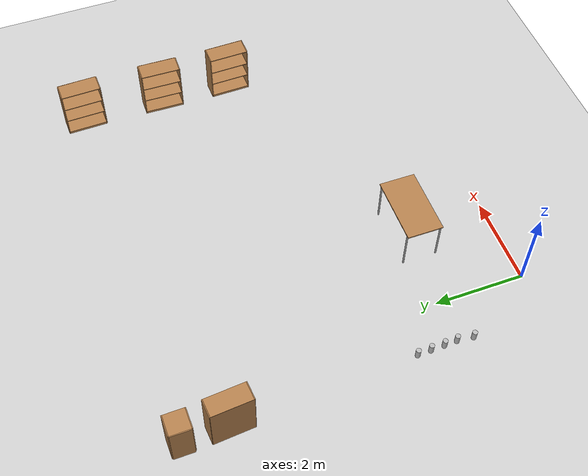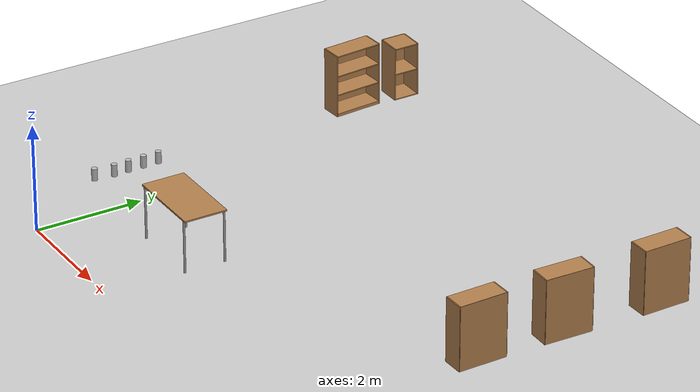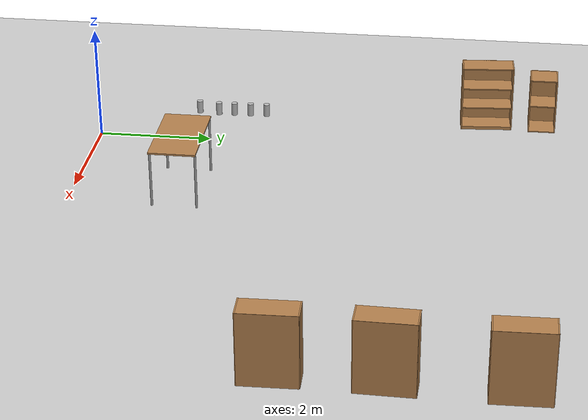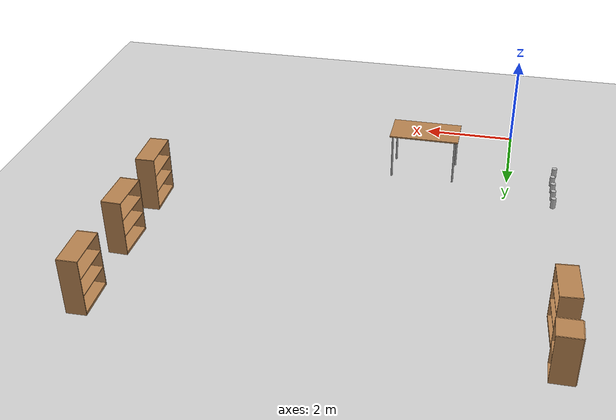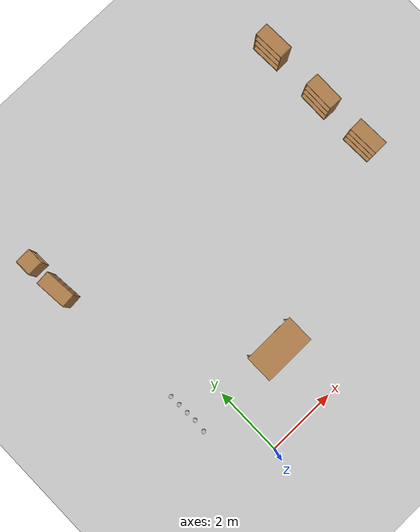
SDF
<sdf version="1.6">
 <world name="default">
  <model name="ground_plane">
   <static>1</static>
   <link name="link">
    <collision name="collision">
     <geometry><plane><normal>0 0 1</normal><size>100 100</size></plane></geometry>
     <surface>
      <contact><collide_bitmask>65535</collide_bitmask></contact>
      <friction><ode><mu>100</mu><mu2>50</mu2></ode></friction>
     </surface>
    </collision>
    <visual name="visual">
     <cast_shadows>0</cast_shadows>
     <geometry><plane><normal>0 0 1</normal><size>100 100</size></plane></geometry>
     <material>
      <script><uri>file://media/materials/scripts/gazebo.material</uri><name>Gazebo/Grey</name></script>
     </material>
    </visual>
   </link>
  </model>
  <model name="table">
   <static>1</static>
   <link name="link">
    <collision name="surface">
     <pose>0 0 1 0 -0 0</pose>
     <geometry><box><size>1.5 0.8 0.03</size></box></geometry>
     <surface><friction><ode><mu>0.6</mu><mu2>0.6</mu2></ode></friction></surface>
    </collision>
    <visual name="visual1">
     <pose>0 0 1 0 -0 0</pose>
     <geometry><box><size>1.5 0.8 0.03</size></box></geometry>
     <material>
      <script><uri>file://media/materials/scripts/gazebo.material</uri><name>Gazebo/Wood</name></script>
     </material>
    </visual>
    <collision name="front_left_leg">
     <pose>0.68 0.38 0.5 0 -0 0</pose>
     <geometry><cylinder><radius>0.02</radius><length>1</length></cylinder></geometry>
    </collision>
    <visual name="front_left_leg">
     <pose>0.68 0.38 0.5 0 -0 0</pose>
     <geometry><cylinder><radius>0.02</radius><length>1</length></cylinder></geometry>
     <material>
      <script><uri>file://media/materials/scripts/gazebo.material</uri><name>Gazebo/Grey</name></script>
     </material>
    </visual>
    <collision name="front_right_leg">
     <pose>0.68 -0.38 0.5 0 -0 0</pose>
     <geometry><cylinder><radius>0.02</radius><length>1</length></cylinder></geometry>
    </collision>
    <visual name="front_right_leg">
     <pose>0.68 -0.38 0.5 0 -0 0</pose>
     <geometry><cylinder><radius>0.02</radius><length>1</length></cylinder></geometry>
     <material>
      <script><uri>file://media/materials/scripts/gazebo.material</uri><name>Gazebo/Grey</name></script>
     </material>
    </visual>
    <collision name="back_right_leg">
     <pose>-0.68 -0.38 0.5 0 -0 0</pose>
     <geometry><cylinder><radius>0.02</radius><length>1</length></cylinder></geometry>
    </collision>
    <visual name="back_right_leg">
     <pose>-0.68 -0.38 0.5 0 -0 0</pose>
     <geometry><cylinder><radius>0.02</radius><length>1</length></cylinder></geometry>
     <material>
      <script><uri>file://media/materials/scripts/gazebo.material</uri><name>Gazebo/Grey</name></script>
     </material>
    </visual>
    <collision name="back_left_leg">
     <pose>-0.68 0.38 0.5 0 -0 0</pose>
     <geometry><cylinder><radius>0.02</radius><length>1</length></cylinder></geometry>
    </collision>
    <visual name="back_left_leg">
     <pose>-0.68 0.38 0.5 0 -0 0</pose>
     <geometry><cylinder><radius>0.02</radius><length>1</length></cylinder></geometry>
     <material>
      <script><uri>file://media/materials/scripts/gazebo.material</uri><name>Gazebo/Grey</name></script>
     </material>
    </visual>
   </link>
   <pose>1.87497 1.84541 0 0 -0 0</pose>
  </model>
  <model name="bookshelf">
   <static>1</static>
   <link name="link">
    <inertial><mass>1</mass></inertial>
    <collision name="back">
     <pose>0 0.005 0.6 0 -0 0</pose>
     <geometry><box><size>0.9 0.01 1.2</size></box></geometry>
    </collision>
    <visual name="visual1">
     <pose>0 0.005 0.6 0 -0 0</pose>
     <geometry><box><size>0.9 0.01 1.2</size></box></geometry>
     <material>
      <script><uri>file://media/materials/scripts/gazebo.material</uri><name>Gazebo/Wood</name></script>
     </material>
    </visual>
    <collision name="left_side">
     <pose>0.45 -0.195 0.6 0 -0 0</pose>
     <geometry><box><size>0.02 0.4 1.2</size></box></geometry>
    </collision>
    <visual name="visual2">
     <pose>0.45 -0.195 0.6 0 -0 0</pose>
     <geometry><box><size>0.02 0.4 1.2</size></box></geometry>
     <material>
      <script><uri>file://media/materials/scripts/gazebo.material</uri><name>Gazebo/Wood</name></script>
     </material>
    </visual>
    <collision name="right_side">
     <pose>-0.45 -0.195 0.6 0 -0 0</pose>
     <geometry><box><size>0.02 0.4 1.2</size></box></geometry>
    </collision>
    <visual name="visual3">
     <pose>-0.45 -0.195 0.6 0 -0 0</pose>
     <geometry><box><size>0.02 0.4 1.2</size></box></geometry>
     <material>
      <script><uri>file://media/materials/scripts/gazebo.material</uri><name>Gazebo/Wood</name></script>
     </material>
    </visual>
    <collision name="bottom">
     <pose>0 -0.195 0.03 0 -0 0</pose>
     <geometry><box><size>0.88 0.4 0.06</size></box></geometry>
    </collision>
    <visual name="visual4">
     <pose>0 -0.195 0.03 0 -0 0</pose>
     <geometry><box><size>0.88 0.4 0.06</size></box></geometry>
     <material>
      <script><uri>file://media/materials/scripts/gazebo.material</uri><name>Gazebo/Wood</name></script>
     </material>
    </visual>
    <collision name="top">
     <pose>0 -0.195 1.19 0 -0 0</pose>
     <geometry><box><size>0.88 0.4 0.02</size></box></geometry>
    </collision>
    <visual name="visual5">
     <pose>0 -0.195 1.19 0 -0 0</pose>
     <geometry><box><size>0.88 0.4 0.02</size></box></geometry>
     <material>
      <script><uri>file://media/materials/scripts/gazebo.material</uri><name>Gazebo/Wood</name></script>
     </material>
    </visual>
    <collision name="low_shelf">
     <pose>0 -0.195 0.43 0 -0 0</pose>
     <geometry><box><size>0.88 0.4 0.02</size></box></geometry>
    </collision>
    <visual name="visual6">
     <pose>0 -0.195 0.43 0 -0 0</pose>
     <geometry><box><size>0.88 0.4 0.02</size></box></geometry>
     <material>
      <script><uri>file://media/materials/scripts/gazebo.material</uri><name>Gazebo/Wood</name></script>
     </material>
    </visual>
    <collision name="high_shelf">
     <pose>0 -0.195 0.8 0 -0 0</pose>
     <geometry><box><size>0.88 0.4 0.02</size></box></geometry>
    </collision>
    <visual name="visual7">
     <pose>0 -0.195 0.8 0 -0 0</pose>
     <geometry><box><size>0.88 0.4 0.02</size></box></geometry>
     <material>
      <script><uri>file://media/materials/scripts/gazebo.material</uri><name>Gazebo/Wood</name></script>
     </material>
    </visual>
   </link>
   <pose>7.58398 5.7994 0 0 0 -1.5925</pose>
  </model>
  <model name="bookshelf_clone">
   <static>1</static>
   <link name="link">
    <inertial><mass>1</mass></inertial>
    <collision name="back">
     <pose>0 0.005 0.6 0 -0 0</pose>
     <geometry><box><size>0.9 0.01 1.2</size></box></geometry>
    </collision>
    <visual name="visual1">
     <pose>0 0.005 0.6 0 -0 0</pose>
     <geometry><box><size>0.9 0.01 1.2</size></box></geometry>
     <material>
      <script><uri>file://media/materials/scripts/gazebo.material</uri><name>Gazebo/Wood</name></script>
     </material>
    </visual>
    <collision name="left_side">
     <pose>0.45 -0.195 0.6 0 -0 0</pose>
     <geometry><box><size>0.02 0.4 1.2</size></box></geometry>
    </collision>
    <visual name="visual2">
     <pose>0.45 -0.195 0.6 0 -0 0</pose>
     <geometry><box><size>0.02 0.4 1.2</size></box></geometry>
     <material>
      <script><uri>file://media/materials/scripts/gazebo.material</uri><name>Gazebo/Wood</name></script>
     </material>
    </visual>
    <collision name="right_side">
     <pose>-0.45 -0.195 0.6 0 -0 0</pose>
     <geometry><box><size>0.02 0.4 1.2</size></box></geometry>
    </collision>
    <visual name="visual3">
     <pose>-0.45 -0.195 0.6 0 -0 0</pose>
     <geometry><box><size>0.02 0.4 1.2</size></box></geometry>
     <material>
      <script><uri>file://media/materials/scripts/gazebo.material</uri><name>Gazebo/Wood</name></script>
     </material>
    </visual>
    <collision name="bottom">
     <pose>0 -0.195 0.03 0 -0 0</pose>
     <geometry><box><size>0.88 0.4 0.06</size></box></geometry>
    </collision>
    <visual name="visual4">
     <pose>0 -0.195 0.03 0 -0 0</pose>
     <geometry><box><size>0.88 0.4 0.06</size></box></geometry>
     <material>
      <script><uri>file://media/materials/scripts/gazebo.material</uri><name>Gazebo/Wood</name></script>
     </material>
    </visual>
    <collision name="top">
     <pose>0 -0.195 1.19 0 -0 0</pose>
     <geometry><box><size>0.88 0.4 0.02</size></box></geometry>
    </collision>
    <visual name="visual5">
     <pose>0 -0.195 1.19 0 -0 0</pose>
     <geometry><box><size>0.88 0.4 0.02</size></box></geometry>
     <material>
      <script><uri>file://media/materials/scripts/gazebo.material</uri><name>Gazebo/Wood</name></script>
     </material>
    </visual>
    <collision name="low_shelf">
     <pose>0 -0.195 0.43 0 -0 0</pose>
     <geometry><box><size>0.88 0.4 0.02</size></box></geometry>
    </collision>
    <visual name="visual6">
     <pose>0 -0.195 0.43 0 -0 0</pose>
     <geometry><box><size>0.88 0.4 0.02</size></box></geometry>
     <material>
      <script><uri>file://media/materials/scripts/gazebo.material</uri><name>Gazebo/Wood</name></script>
     </material>
    </visual>
    <collision name="high_shelf">
     <pose>0 -0.195 0.8 0 -0 0</pose>
     <geometry><box><size>0.88 0.4 0.02</size></box></geometry>
    </collision>
    <visual name="visual7">
     <pose>0 -0.195 0.8 0 -0 0</pose>
     <geometry><box><size>0.88 0.4 0.02</size></box></geometry>
     <material>
      <script><uri>file://media/materials/scripts/gazebo.material</uri><name>Gazebo/Wood</name></script>
     </material>
    </visual>
   </link>
   <pose>7.57618 4.16292 0 0 0 -1.54718</pose>
  </model>
  <model name="bookshelf_clone_0">
   <static>1</static>
   <link name="link">
    <inertial><mass>1</mass></inertial>
    <collision name="back">
     <pose>0 0.005 0.6 0 -0 0</pose>
     <geometry><box><size>0.9 0.01 1.2</size></box></geometry>
    </collision>
    <visual name="visual1">
     <pose>0 0.005 0.6 0 -0 0</pose>
     <geometry><box><size>0.9 0.01 1.2</size></box></geometry>
     <material>
      <script><uri>file://media/materials/scripts/gazebo.material</uri><name>Gazebo/Wood</name></script>
     </material>
    </visual>
    <collision name="left_side">
     <pose>0.45 -0.195 0.6 0 -0 0</pose>
     <geometry><box><size>0.02 0.4 1.2</size></box></geometry>
    </collision>
    <visual name="visual2">
     <pose>0.45 -0.195 0.6 0 -0 0</pose>
     <geometry><box><size>0.02 0.4 1.2</size></box></geometry>
     <material>
      <script><uri>file://media/materials/scripts/gazebo.material</uri><name>Gazebo/Wood</name></script>
     </material>
    </visual>
    <collision name="right_side">
     <pose>-0.45 -0.195 0.6 0 -0 0</pose>
     <geometry><box><size>0.02 0.4 1.2</size></box></geometry>
    </collision>
    <visual name="visual3">
     <pose>-0.45 -0.195 0.6 0 -0 0</pose>
     <geometry><box><size>0.02 0.4 1.2</size></box></geometry>
     <material>
      <script><uri>file://media/materials/scripts/gazebo.material</uri><name>Gazebo/Wood</name></script>
     </material>
    </visual>
    <collision name="bottom">
     <pose>0 -0.195 0.03 0 -0 0</pose>
     <geometry><box><size>0.88 0.4 0.06</size></box></geometry>
    </collision>
    <visual name="visual4">
     <pose>0 -0.195 0.03 0 -0 0</pose>
     <geometry><box><size>0.88 0.4 0.06</size></box></geometry>
     <material>
      <script><uri>file://media/materials/scripts/gazebo.material</uri><name>Gazebo/Wood</name></script>
     </material>
    </visual>
    <collision name="top">
     <pose>0 -0.195 1.19 0 -0 0</pose>
     <geometry><box><size>0.88 0.4 0.02</size></box></geometry>
    </collision>
    <visual name="visual5">
     <pose>0 -0.195 1.19 0 -0 0</pose>
     <geometry><box><size>0.88 0.4 0.02</size></box></geometry>
     <material>
      <script><uri>file://media/materials/scripts/gazebo.material</uri><name>Gazebo/Wood</name></script>
     </material>
    </visual>
    <collision name="low_shelf">
     <pose>0 -0.195 0.43 0 -0 0</pose>
     <geometry><box><size>0.88 0.4 0.02</size></box></geometry>
    </collision>
    <visual name="visual6">
     <pose>0 -0.195 0.43 0 -0 0</pose>
     <geometry><box><size>0.88 0.4 0.02</size></box></geometry>
     <material>
      <script><uri>file://media/materials/scripts/gazebo.material</uri><name>Gazebo/Wood</name></script>
     </material>
    </visual>
    <collision name="high_shelf">
     <pose>0 -0.195 0.8 0 -0 0</pose>
     <geometry><box><size>0.88 0.4 0.02</size></box></geometry>
    </collision>
    <visual name="visual7">
     <pose>0 -0.195 0.8 0 -0 0</pose>
     <geometry><box><size>0.88 0.4 0.02</size></box></geometry>
     <material>
      <script><uri>file://media/materials/scripts/gazebo.material</uri><name>Gazebo/Wood</name></script>
     </material>
    </visual>
   </link>
   <pose>7.60102 7.69258 0 0 0 -1.54718</pose>
  </model>
  <model name="bookshelf_0">
   <static>1</static>
   <link name="link">
    <inertial><mass>1</mass></inertial>
    <collision name="back">
     <pose>0 0.005 0.6 0 -0 0</pose>
     <geometry><box><size>0.9 0.01 1.2</size></box></geometry>
    </collision>
    <visual name="visual1">
     <pose>0 0.005 0.6 0 -0 0</pose>
     <geometry><box><size>0.9 0.01 1.2</size></box></geometry>
     <material>
      <script><uri>file://media/materials/scripts/gazebo.material</uri><name>Gazebo/Wood</name></script>
     </material>
    </visual>
    <collision name="left_side">
     <pose>0.45 -0.195 0.6 0 -0 0</pose>
     <geometry><box><size>0.02 0.4 1.2</size></box></geometry>
    </collision>
    <visual name="visual2">
     <pose>0.45 -0.195 0.6 0 -0 0</pose>
     <geometry><box><size>0.02 0.4 1.2</size></box></geometry>
     <material>
      <script><uri>file://media/materials/scripts/gazebo.material</uri><name>Gazebo/Wood</name></script>
     </material>
    </visual>
    <collision name="right_side">
     <pose>-0.45 -0.195 0.6 0 -0 0</pose>
     <geometry><box><size>0.02 0.4 1.2</size></box></geometry>
    </collision>
    <visual name="visual3">
     <pose>-0.45 -0.195 0.6 0 -0 0</pose>
     <geometry><box><size>0.02 0.4 1.2</size></box></geometry>
     <material>
      <script><uri>file://media/materials/scripts/gazebo.material</uri><name>Gazebo/Wood</name></script>
     </material>
    </visual>
    <collision name="bottom">
     <pose>0 -0.195 0.03 0 -0 0</pose>
     <geometry><box><size>0.88 0.4 0.06</size></box></geometry>
    </collision>
    <visual name="visual4">
     <pose>0 -0.195 0.03 0 -0 0</pose>
     <geometry><box><size>0.88 0.4 0.06</size></box></geometry>
     <material>
      <script><uri>file://media/materials/scripts/gazebo.material</uri><name>Gazebo/Wood</name></script>
     </material>
    </visual>
    <collision name="top">
     <pose>0 -0.195 1.19 0 -0 0</pose>
     <geometry><box><size>0.88 0.4 0.02</size></box></geometry>
    </collision>
    <visual name="visual5">
     <pose>0 -0.195 1.19 0 -0 0</pose>
     <geometry><box><size>0.88 0.4 0.02</size></box></geometry>
     <material>
      <script><uri>file://media/materials/scripts/gazebo.material</uri><name>Gazebo/Wood</name></script>
     </material>
    </visual>
    <collision name="low_shelf">
     <pose>0 -0.195 0.43 0 -0 0</pose>
     <geometry><box><size>0.88 0.4 0.02</size></box></geometry>
    </collision>
    <visual name="visual6">
     <pose>0 -0.195 0.43 0 -0 0</pose>
     <geometry><box><size>0.88 0.4 0.02</size></box></geometry>
     <material>
      <script><uri>file://media/materials/scripts/gazebo.material</uri><name>Gazebo/Wood</name></script>
     </material>
    </visual>
    <collision name="high_shelf">
     <pose>0 -0.195 0.8 0 -0 0</pose>
     <geometry><box><size>0.88 0.4 0.02</size></box></geometry>
    </collision>
    <visual name="visual7">
     <pose>0 -0.195 0.8 0 -0 0</pose>
     <geometry><box><size>0.88 0.4 0.02</size></box></geometry>
     <material>
      <script><uri>file://media/materials/scripts/gazebo.material</uri><name>Gazebo/Wood</name></script>
     </material>
    </visual>
   </link>
   <pose>-1.37204 6.89346 0 0 -0 1.64797</pose>
  </model>
  <model name="beer">
   <link name="link">
    <pose>0 0 0.115 0 -0 0</pose>
    <inertial>
     <mass>0.39</mass>
     <inertia><ixx>0.00058</ixx><ixy>0</ixy><ixz>0</ixz><iyy>0.00058</iyy><iyz>0</iyz><izz>0.00019</izz></inertia>
    </inertial>
    <collision name="collision">
     <geometry><cylinder><radius>0.055</radius><length>0.23</length></cylinder></geometry>
    </collision>
    <visual name="visual">
     <geometry><cylinder><radius>0.055</radius><length>0.23</length></cylinder></geometry>
     <material>
      <script>
       <uri>model://beer/materials/scripts</uri>
       <uri>model://beer/materials/textures</uri>
       <name>Beer/Diffuse</name>
      </script>
     </material>
    </visual>
   </link>
   <pose>-0.977429 1.99935 0.039804 1.2e-05 6.9e-05 -0.000198</pose>
  </model>
  <model name="beer_clone">
   <link name="link">
    <pose>0 0 0.115 0 -0 0</pose>
    <inertial>
     <mass>0.39</mass>
     <inertia><ixx>0.00058</ixx><ixy>0</ixy><ixz>0</ixz><iyy>0.00058</iyy><iyz>0</iyz><izz>0.00019</izz></inertia>
    </inertial>
    <collision name="collision">
     <geometry><cylinder><radius>0.055</radius><length>0.23</length></cylinder></geometry>
    </collision>
    <visual name="visual">
     <geometry><cylinder><radius>0.055</radius><length>0.23</length></cylinder></geometry>
     <material>
      <script>
       <uri>model://beer/materials/scripts</uri>
       <uri>model://beer/materials/textures</uri>
       <name>Beer/Diffuse</name>
      </script>
     </material>
    </visual>
   </link>
   <pose>-0.991004 2.28359 0.039792 4e-05 -0 -0.000419</pose>
  </model>
  <model name="beer_clone_0">
   <link name="link">
    <pose>0 0 0.115 0 -0 0</pose>
    <inertial>
     <mass>0.39</mass>
     <inertia><ixx>0.00058</ixx><ixy>0</ixy><ixz>0</ixz><iyy>0.00058</iyy><iyz>0</iyz><izz>0.00019</izz></inertia>
    </inertial>
    <collision name="collision">
     <geometry><cylinder><radius>0.055</radius><length>0.23</length></cylinder></geometry>
    </collision>
    <visual name="visual">
     <geometry><cylinder><radius>0.055</radius><length>0.23</length></cylinder></geometry>
     <material>
      <script>
       <uri>model://beer/materials/scripts</uri>
       <uri>model://beer/materials/textures</uri>
       <name>Beer/Diffuse</name>
      </script>
     </material>
    </visual>
   </link>
   <pose>-0.99855 2.58406 0.039804 1.2e-05 6.7e-05 -0.000441</pose>
  </model>
  <model name="beer_clone_1">
   <link name="link">
    <pose>0 0 0.115 0 -0 0</pose>
    <inertial>
     <mass>0.39</mass>
     <inertia><ixx>0.00058</ixx><ixy>0</ixy><ixz>0</ixz><iyy>0.00058</iyy><iyz>0</iyz><izz>0.00019</izz></inertia>
    </inertial>
    <collision name="collision">
     <geometry><cylinder><radius>0.055</radius><length>0.23</length></cylinder></geometry>
    </collision>
    <visual name="visual">
     <geometry><cylinder><radius>0.055</radius><length>0.23</length></cylinder></geometry>
     <material>
      <script>
       <uri>model://beer/materials/scripts</uri>
       <uri>model://beer/materials/textures</uri>
       <name>Beer/Diffuse</name>
      </script>
     </material>
    </visual>
   </link>
   <pose>-1.00742 2.88211 0.039805 2.4e-05 9.1e-05 -0.000305</pose>
  </model>
  <model name="beer_clone_2">
   <link name="link">
    <pose>0 0 0.115 0 -0 0</pose>
    <inertial>
     <mass>0.39</mass>
     <inertia><ixx>0.00058</ixx><ixy>0</ixy><ixz>0</ixz><iyy>0.00058</iyy><iyz>0</iyz><izz>0.00019</izz></inertia>
    </inertial>
    <collision name="collision">
     <geometry><cylinder><radius>0.055</radius><length>0.23</length></cylinder></geometry>
    </collision>
    <visual name="visual">
     <geometry><cylinder><radius>0.055</radius><length>0.23</length></cylinder></geometry>
     <material>
      <script>
       <uri>model://beer/materials/scripts</uri>
       <uri>model://beer/materials/textures</uri>
       <name>Beer/Diffuse</name>
      </script>
     </material>
    </visual>
   </link>
   <pose>-1.0162 1.63575 0.039806 2.5e-05 9.9e-05 -0.000177</pose>
  </model>
  <model name="cabinet">
   <static>1</static>
   <link name="cabinet_bottom_plate">
    <inertial>
     <pose>0 0 -1 0 -0 0</pose>
     <inertia><ixx>2.05</ixx><ixy>0</ixy><ixz>0</ixz><iyy>2.05</iyy><iyz>0</iyz><izz>2.05</izz></inertia>
     <mass>25</mass>
    </inertial>
    <collision name="cabinet_bottom_plate_geom">
     <pose>0 0 0.01 0 -0 0</pose>
     <geometry><box><size>0.45 0.45 0.02</size></box></geometry>
    </collision>
    <visual name="cabinet_bottom_plate_geom_visual">
     <pose>0 0 0.01 0 -0 0</pose>
     <geometry><box><size>0.45 0.45 0.02</size></box></geometry>
     <material>
      <script><uri>file://media/materials/scripts/gazebo.material</uri><name>Gazebo/Wood</name></script>
     </material>
    </visual>
    <collision name="cabinet_bottom_plate_geom_cabinet_back_plate">
     <pose>0.235 0 0.51 0 -0 0</pose>
     <geometry><box><size>0.02 0.45 1.02</size></box></geometry>
    </collision>
    <visual name="cabinet_bottom_plate_geom_cabinet_back_plate_visual">
     <pose>0.235 0 0.51 0 -0 0</pose>
     <geometry><box><size>0.02 0.45 1.02</size></box></geometry>
     <material>
      <script><uri>file://media/materials/scripts/gazebo.material</uri><name>Gazebo/Wood</name></script>
     </material>
    </visual>
    <collision name="cabinet_bottom_plate_geom_cabinet_left_plate">
     <pose>0 0.235 0.51 0 -0 0</pose>
     <geometry><box><size>0.45 0.02 1.02</size></box></geometry>
    </collision>
    <visual name="cabinet_bottom_plate_geom_cabinet_left_plate_visual">
     <pose>0 0.235 0.51 0 -0 0</pose>
     <geometry><box><size>0.45 0.02 1.02</size></box></geometry>
     <material>
      <script><uri>file://media/materials/scripts/gazebo.material</uri><name>Gazebo/Wood</name></script>
     </material>
    </visual>
    <collision name="cabinet_bottom_plate_geom_cabinet_middle_plate">
     <pose>0 0 0.51 0 -0 0</pose>
     <geometry><box><size>0.45 0.45 0.02</size></box></geometry>
    </collision>
    <visual name="cabinet_bottom_plate_geom_cabinet_middle_plate_visual">
     <pose>0 0 0.51 0 -0 0</pose>
     <geometry><box><size>0.45 0.45 0.02</size></box></geometry>
     <material>
      <script><uri>file://media/materials/scripts/gazebo.material</uri><name>Gazebo/Wood</name></script>
     </material>
    </visual>
    <collision name="cabinet_bottom_plate_geom_cabinet_right_plate">
     <pose>0 -0.235 0.51 0 -0 0</pose>
     <geometry><box><size>0.45 0.02 1.02</size></box></geometry>
    </collision>
    <visual name="cabinet_bottom_plate_geom_cabinet_right_plate_visual">
     <pose>0 -0.235 0.51 0 -0 0</pose>
     <geometry><box><size>0.45 0.02 1.02</size></box></geometry>
     <material>
      <script><uri>file://media/materials/scripts/gazebo.material</uri><name>Gazebo/Wood</name></script>
     </material>
    </visual>
    <collision name="cabinet_bottom_plate_geom_cabinet_top_plate">
     <pose>0 0 1.01 0 -0 0</pose>
     <geometry><box><size>0.45 0.45 0.02</size></box></geometry>
    </collision>
    <visual name="cabinet_bottom_plate_geom_cabinet_top_plate_visual">
     <pose>0 0 1.01 0 -0 0</pose>
     <geometry><box><size>0.45 0.45 0.02</size></box></geometry>
     <material>
      <script><uri>file://media/materials/scripts/gazebo.material</uri><name>Gazebo/Wood</name></script>
     </material>
    </visual>
   </link>
   <pose>-1.20006 7.91999 0 0 0 -3.13157</pose>
  </model>
 </world>
</sdf>
